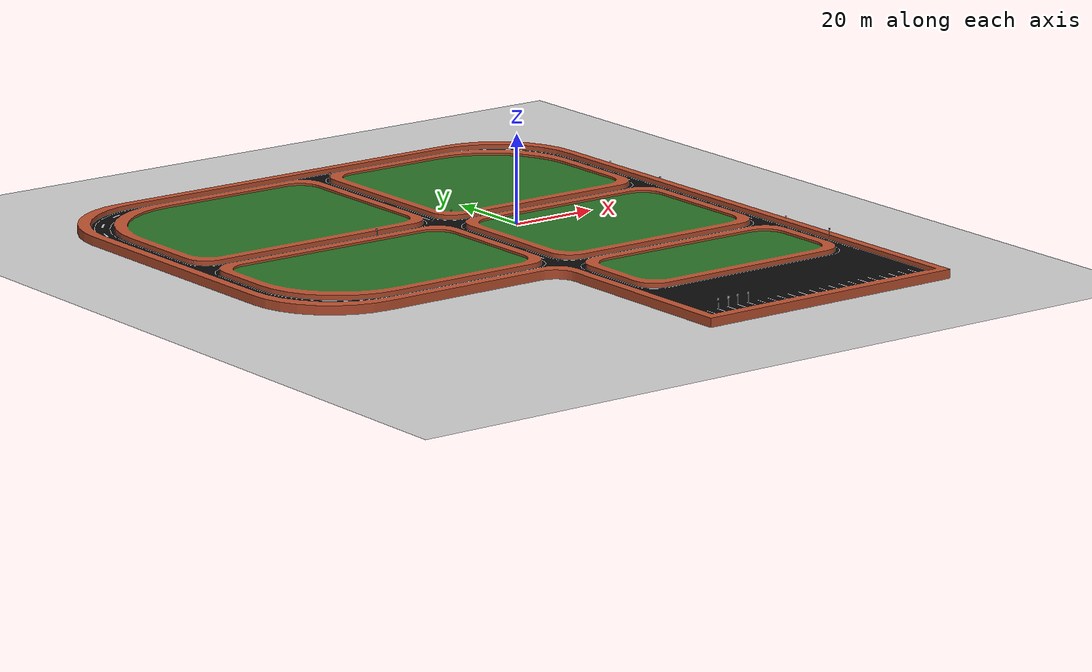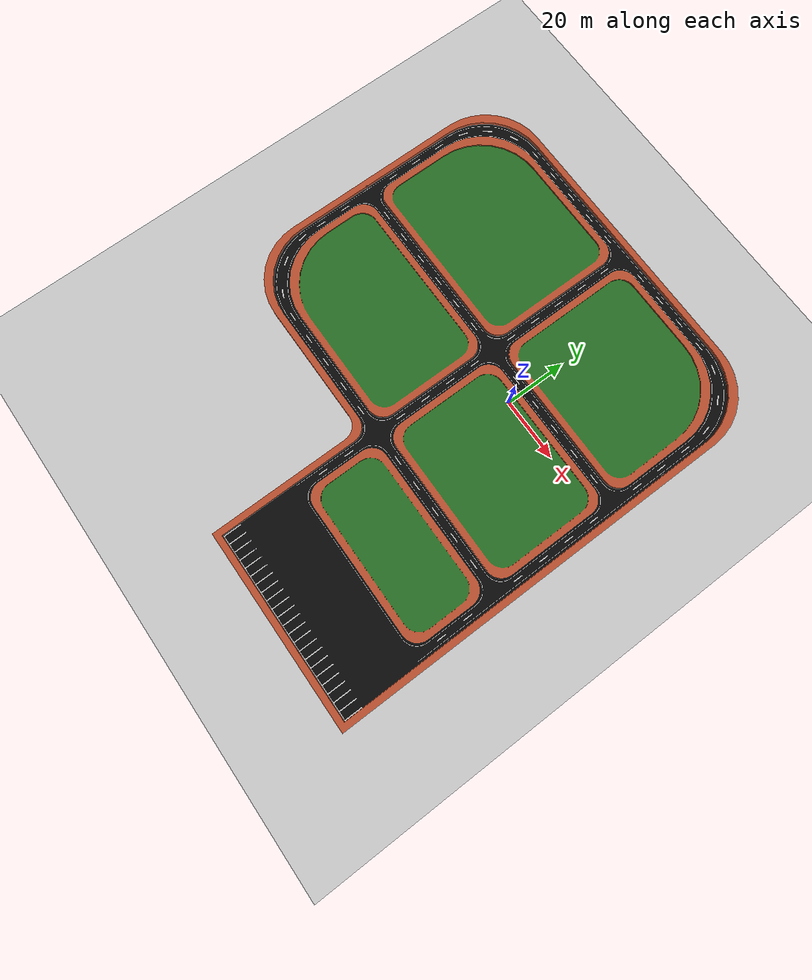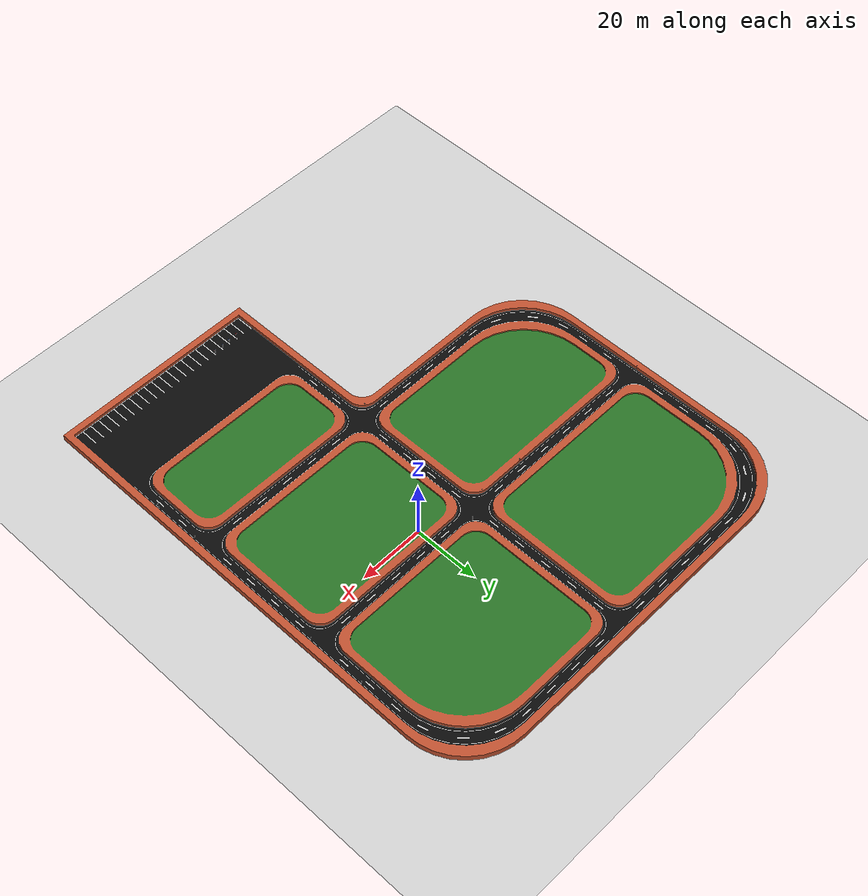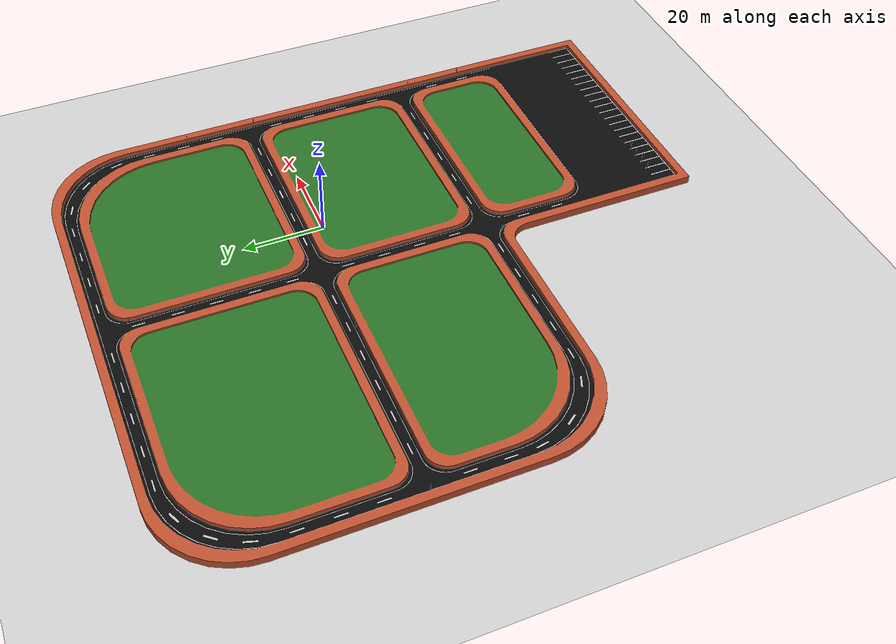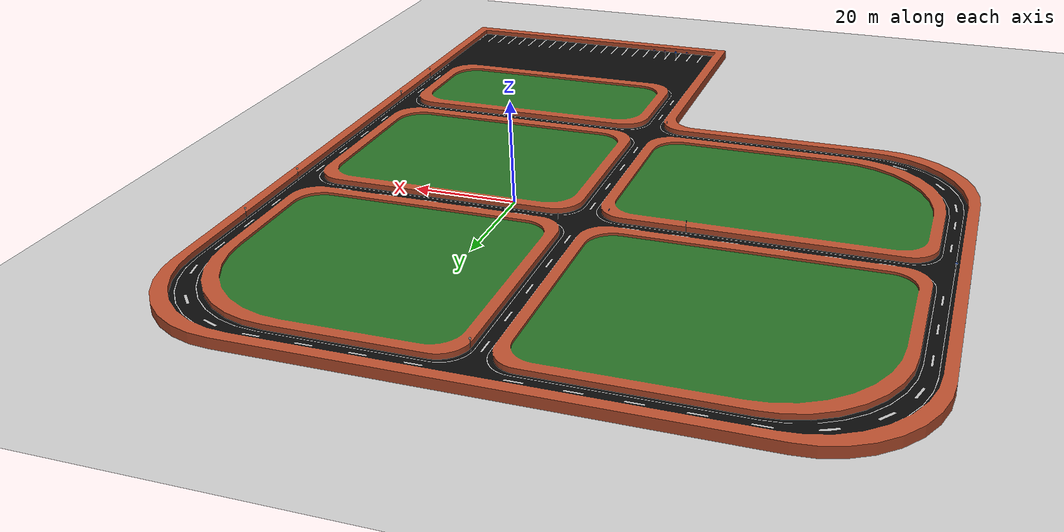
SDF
<sdf version="1.6">
 <world name="default">
  <light name="sun" type="directional">
   <pose>0 0 10 0 -0 0</pose>
   <diffuse>0.8 0.8 0.8 1</diffuse>
   <specular>0.2 0.2 0.2 1</specular>
   <attenuation>
    <range>1000</range>
    <constant>0.9</constant>
    <linear>0.01</linear>
    <quadratic>0.001</quadratic>
   </attenuation>
   <direction>-0.5 0.1 -0.9</direction>
  </light>
  <model name="parkur">
   <pose>45.04 -89.9803 0 0 -0 0</pose>
   <link name="link_3">
    <inertial>
     <mass>1</mass>
     <inertia>
      <ixx>0.166667</ixx>
      <ixy>0</ixy>
      <ixz>0</ixz>
      <iyy>0.166667</iyy>
      <iyz>0</iyz>
      <izz>0.166667</izz>
     </inertia>
    </inertial>
    <pose>0 0 0 1.57 -0 0</pose>
    <visual name="visual">
     <geometry>
      <mesh><uri>/home/heisenberg/catkin_ws/src/models/worlds/parkur.DAE</uri><scale>1 1 1</scale></mesh>
     </geometry>
    </visual>
    <collision name="collision">
     <geometry>
      <mesh><uri>/home/heisenberg/catkin_ws/src/models/worlds/parkur.DAE</uri><scale>1 1 1</scale></mesh>
     </geometry>
     <surface>
      <friction>
       <ode><mu>1</mu><mu2>1</mu2><fdir1>0 0 0</fdir1><slip1>0</slip1><slip2>0</slip2></ode>
       <torsional>
        <coefficient>1</coefficient>
        <patch_radius>0</patch_radius>
        <surface_radius>0</surface_radius>
        <use_patch_radius>1</use_patch_radius>
        <ode><slip>0</slip></ode>
       </torsional>
      </friction>
      <bounce><restitution_coefficient>0</restitution_coefficient><threshold>1e+06</threshold></bounce>
      <contact>
       <collide_without_contact>0</collide_without_contact>
       <collide_without_contact_bitmask>1</collide_without_contact_bitmask>
       <collide_bitmask>1</collide_bitmask>
       <ode>
        <soft_cfm>0</soft_cfm>
        <soft_erp>0.2</soft_erp>
        <kp>1e+13</kp>
        <kd>1</kd>
        <max_vel>0.01</max_vel>
        <min_depth>0</min_depth>
       </ode>
       <bullet>
        <split_impulse>1</split_impulse>
        <split_impulse_penetration_threshold>-0.01</split_impulse_penetration_threshold>
        <soft_cfm>0</soft_cfm>
        <soft_erp>0.2</soft_erp>
        <kp>1e+13</kp>
        <kd>1</kd>
       </bullet>
      </contact>
     </surface>
    </collision>
   </link>
   <static>1</static>
  </model>
  <model name="ground_plane">
   <static>1</static>
   <link name="link">
    <collision name="collision">
     <geometry><plane><normal>0 0 1</normal><size>100 100</size></plane></geometry>
     <surface>
      <contact><collide_bitmask>65535</collide_bitmask></contact>
      <friction><ode><mu>100</mu><mu2>50</mu2></ode></friction>
     </surface>
    </collision>
    <visual name="visual">
     <cast_shadows>0</cast_shadows>
     <geometry><plane><normal>0 0 1</normal><size>100 100</size></plane></geometry>
     <material>
      <script><uri>file://media/materials/scripts/gazebo.material</uri><name>Gazebo/Grey</name></script>
     </material>
    </visual>
   </link>
  </model>
  <gravity>0 0 -9.8</gravity>
  <magnetic_field>6e-06 2.3e-05 -4.2e-05</magnetic_field>
  <atmosphere type="adiabatic"/>
  <physics name="default_physics" default="0" type="ode">
   <max_step_size>0.001</max_step_size>
   <real_time_factor>1</real_time_factor>
   <real_time_update_rate>1000</real_time_update_rate>
  </physics>
  <scene><ambient>0.4 0.4 0.4 1</ambient><background>0.7 0.7 0.7 1</background><shadows>1</shadows></scene>
  <audio><device>default</device></audio>
  <spherical_coordinates>
   <surface_model>EARTH_WGS84</surface_model>
   <latitude_deg>0</latitude_deg>
   <longitude_deg>0</longitude_deg>
   <elevation>0</elevation>
   <heading_deg>0</heading_deg>
  </spherical_coordinates>
  <model name="my_mesh">
   <static>1</static>
   <link name="body">
    <visual name="visual">
     <geometry><mesh><uri>/home/heisenberg/catkin_ws/src/models/worlds/dur.DAE</uri></mesh></geometry>
    </visual>
   </link>
  </model>
  <model name="20">
   <pose>42.5973 -53.7018 3.40729 1.61876 -0 0</pose>
   <static>1</static>
   <link name="body">
    <visual name="visual">
     <geometry><mesh><uri>/home/heisenberg/catkin_ws/src/models/worlds/20.DAE</uri></mesh></geometry>
    </visual>
   </link>
  </model>
  <model name="noentry">
   <pose>-11.1366 -82.5729 3.08319 1.59013 0.014212 -3.13835</pose>
   <static>1</static>
   <link name="body">
    <visual name="visual">
     <geometry><mesh><uri>/home/heisenberg/catkin_ws/src/models/worlds/noentry.DAE</uri></mesh></geometry>
    </visual>
   </link>
  </model>
  <model name="park">
   <pose>-8.38873 -82.4635 3.02332 1.57978 0.000878 3.13214</pose>
   <static>1</static>
   <link name="body">
    <visual name="visual">
     <geometry><mesh><uri>/home/heisenberg/catkin_ws/src/models/worlds/park.DAE</uri></mesh></geometry>
    </visual>
   </link>
  </model>
  <model name="durak.DAE">
   <pose>-34.1363 4.41797 3.09164 1.57244 0.01393 -1.5457</pose>
   <static>1</static>
   <link name="body">
    <visual name="visual">
     <geometry><mesh><uri>/home/heisenberg/catkin_ws/src/models/worlds/durak.DAE</uri></mesh></geometry>
    </visual>
   </link>
  </model>
  <model name="30">
   <pose>42.6544 22.1037 3.06787 1.57172 0.011194 0.028377</pose>
   <static>1</static>
   <link name="body">
    <visual name="visual">
     <geometry><mesh><uri>/home/heisenberg/catkin_ws/src/models/worlds/30.DAE</uri></mesh></geometry>
    </visual>
   </link>
  </model>
  <model name="left">
   <pose>-80.382 6.12047 3.09143 1.57286 -0.000154 -3.06706</pose>
   <static>1</static>
   <link name="body">
    <visual name="visual">
     <geometry><mesh><uri>/home/heisenberg/catkin_ws/src/models/worlds/lft.DAE</uri></mesh></geometry>
    </visual>
   </link>
  </model>
  <model name="noright">
   <pose>-13.5161 50.5838 3.08235 1.56834 -0 0</pose>
   <static>1</static>
   <link name="body">
    <visual name="visual">
     <geometry><mesh><uri>/home/heisenberg/catkin_ws/src/models/worlds/noright.DAE</uri></mesh></geometry>
    </visual>
   </link>
  </model>
  <model name="noleft">
   <pose>42.6287 -39.2142 3.09814 1.59202 -0.018714 0.023243</pose>
   <static>1</static>
   <link name="body">
    <visual name="visual">
     <geometry><mesh><uri>/home/heisenberg/catkin_ws/src/models/worlds/noleft.DAE</uri></mesh></geometry>
    </visual>
   </link>
  </model>
  <model name="turnright">
   <pose>-18.555 -38.6056 3.16459 1.57067 0.003789 -1.60526</pose>
   <static>1</static>
   <link name="body">
    <visual name="visual">
     <geometry><mesh><uri>/home/heisenberg/catkin_ws/src/models/worlds/yesright.DAE</uri></mesh></geometry>
    </visual>
   </link>
  </model>
  <model name="turnleft">
   <pose>42.7158 4.28052 3.07681 1.58804 5e-05 -0.002904</pose>
   <static>1</static>
   <link name="body">
    <visual name="visual">
     <geometry><mesh><uri>/home/heisenberg/catkin_ws/src/models/worlds/yesleft.DAE</uri></mesh></geometry>
    </visual>
   </link>
  </model>
  <model name="right">
   <pose>-11.682 8.16637 3.15407 1.57382 -0.041465 1.498</pose>
   <static>1</static>
   <link name="body">
    <visual name="visual">
     <geometry><mesh><uri>/home/heisenberg/catkin_ws/src/models/worlds/rght.DAE</uri></mesh></geometry>
    </visual>
   </link>
  </model>
  <model name="turnright_clone">
   <pose>-19.8116 3.94512 3.13882 1.57067 0.003789 -1.60526</pose>
   <static>1</static>
   <link name="body">
    <visual name="visual"><geometry><mesh><uri>model://yesright.DAE</uri></mesh></geometry></visual>
   </link>
  </model>
  <model name="noentry_clone">
   <pose>-5.7769 -82.3178 3.08319 1.59013 0.014212 -3.13835</pose>
   <static>1</static>
   <link name="body">
    <visual name="visual"><geometry><mesh><uri>model://noentry.DAE</uri></mesh></geometry></visual>
   </link>
  </model>
  <model name="noentry_clone_0">
   <pose>-3.0598 -82.3991 3.08319 1.59013 0.014212 -3.13835</pose>
   <static>1</static>
   <link name="body">
    <visual name="visual">
     <geometry><mesh><uri>/home/heisenberg/catkin_ws/src/models/worlds/noentry.DAE</uri></mesh></geometry>
    </visual>
   </link>
  </model>
 </world>
</sdf>
